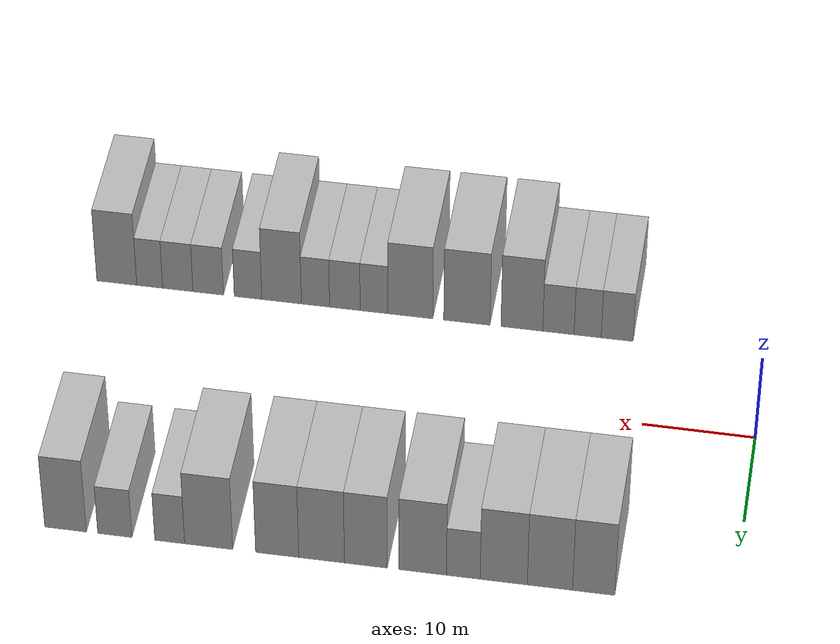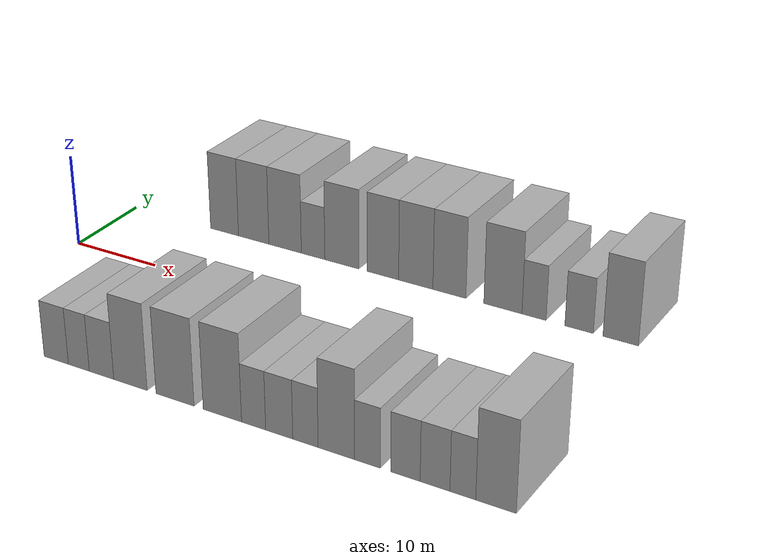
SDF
<sdf version="1.6">
 <world name="default">
  <model name="building_1">
   <static>1</static>
   <pose>11.8060 15.0000 0 0.000000 0.000000 1.570796</pose>
   <link name="link">
    <pose>0 0 4.50 0 0 0</pose>
    <collision name="collision"><geometry><box><size>10.0000 3.6119 9.0000</size></box></geometry></collision>
    <visual name="visual">
     <cast_shadows>0</cast_shadows>
     <geometry><box><size>10.0000 3.6119 9.0000</size></box></geometry>
     <material>
      <script>
       <uri>model://HANNAS_wall/materials/scripts</uri>
       <uri>model://HANNAS_wall/materials/textures</uri>
       <name>vrc/HANNAS_wall</name>
      </script>
     </material>
    </visual>
   </link>
  </model>
  <model name="building_2">
   <static>1</static>
   <pose>15.5486 15.0000 0 0.000000 0.000000 1.570796</pose>
   <link name="link">
    <pose>0 0 4.50 0 0 0</pose>
    <collision name="collision"><geometry><box><size>10.0000 3.8733 9.0000</size></box></geometry></collision>
    <visual name="visual">
     <cast_shadows>0</cast_shadows>
     <geometry><box><size>10.0000 3.8733 9.0000</size></box></geometry>
     <material>
      <script>
       <uri>model://HANNAS_wall/materials/scripts</uri>
       <uri>model://HANNAS_wall/materials/textures</uri>
       <name>vrc/HANNAS_wall</name>
      </script>
     </material>
    </visual>
   </link>
  </model>
  <model name="building_3">
   <static>1</static>
   <pose>19.5123 15.0000 0 0.000000 0.000000 1.570796</pose>
   <link name="link">
    <pose>0 0 4.50 0 0 0</pose>
    <collision name="collision"><geometry><box><size>10.0000 4.0541 9.0000</size></box></geometry></collision>
    <visual name="visual">
     <cast_shadows>0</cast_shadows>
     <geometry><box><size>10.0000 4.0541 9.0000</size></box></geometry>
     <material>
      <script>
       <uri>model://HANNAS_wall/materials/scripts</uri>
       <uri>model://HANNAS_wall/materials/textures</uri>
       <name>vrc/HANNAS_wall</name>
      </script>
     </material>
    </visual>
   </link>
  </model>
  <model name="building_4">
   <static>1</static>
   <pose>22.9831 15.0000 0 0.000000 0.000000 1.570796</pose>
   <link name="link">
    <pose>0 0 3.00 0 0 0</pose>
    <collision name="collision"><geometry><box><size>10.0000 2.8875 6.0000</size></box></geometry></collision>
    <visual name="visual">
     <cast_shadows>0</cast_shadows>
     <geometry><box><size>10.0000 2.8875 6.0000</size></box></geometry>
     <material>
      <script>
       <uri>model://HANNAS_wall/materials/scripts</uri>
       <uri>model://HANNAS_wall/materials/textures</uri>
       <name>vrc/HANNAS_wall</name>
      </script>
     </material>
    </visual>
   </link>
  </model>
  <model name="building_5">
   <static>1</static>
   <pose>26.4760 15.0000 0 0.000000 0.000000 1.570796</pose>
   <link name="link">
    <pose>0 0 4.50 0 0 0</pose>
    <collision name="collision"><geometry><box><size>10.0000 4.0983 9.0000</size></box></geometry></collision>
    <visual name="visual">
     <cast_shadows>0</cast_shadows>
     <geometry><box><size>10.0000 4.0983 9.0000</size></box></geometry>
     <material>
      <script>
       <uri>model://HANNAS_wall/materials/scripts</uri>
       <uri>model://HANNAS_wall/materials/textures</uri>
       <name>vrc/HANNAS_wall</name>
      </script>
     </material>
    </visual>
   </link>
  </model>
  <model name="building_6">
   <static>1</static>
   <pose>31.3769 15.0000 0 0.000000 0.000000 1.570796</pose>
   <link name="link">
    <pose>0 0 4.50 0 0 0</pose>
    <collision name="collision"><geometry><box><size>10.0000 3.7035 9.0000</size></box></geometry></collision>
    <visual name="visual">
     <cast_shadows>0</cast_shadows>
     <geometry><box><size>10.0000 3.7035 9.0000</size></box></geometry>
     <material>
      <script>
       <uri>model://HANNAS_wall/materials/scripts</uri>
       <uri>model://HANNAS_wall/materials/textures</uri>
       <name>vrc/HANNAS_wall</name>
      </script>
     </material>
    </visual>
   </link>
  </model>
  <model name="building_7">
   <static>1</static>
   <pose>35.2094 15.0000 0 0.000000 0.000000 1.570796</pose>
   <link name="link">
    <pose>0 0 4.50 0 0 0</pose>
    <collision name="collision"><geometry><box><size>10.0000 3.9614 9.0000</size></box></geometry></collision>
    <visual name="visual">
     <cast_shadows>0</cast_shadows>
     <geometry><box><size>10.0000 3.9614 9.0000</size></box></geometry>
     <material>
      <script>
       <uri>model://HANNAS_wall/materials/scripts</uri>
       <uri>model://HANNAS_wall/materials/textures</uri>
       <name>vrc/HANNAS_wall</name>
      </script>
     </material>
    </visual>
   </link>
  </model>
  <model name="building_8">
   <static>1</static>
   <pose>39.0596 15.0000 0 0.000000 0.000000 1.570796</pose>
   <link name="link">
    <pose>0 0 4.50 0 0 0</pose>
    <collision name="collision"><geometry><box><size>10.0000 3.7391 9.0000</size></box></geometry></collision>
    <visual name="visual">
     <cast_shadows>0</cast_shadows>
     <geometry><box><size>10.0000 3.7391 9.0000</size></box></geometry>
     <material>
      <script>
       <uri>model://HANNAS_wall/materials/scripts</uri>
       <uri>model://HANNAS_wall/materials/textures</uri>
       <name>vrc/HANNAS_wall</name>
      </script>
     </material>
    </visual>
   </link>
  </model>
  <model name="building_9">
   <static>1</static>
   <pose>45.0208 15.0000 0 0.000000 0.000000 1.570796</pose>
   <link name="link">
    <pose>0 0 4.50 0 0 0</pose>
    <collision name="collision"><geometry><box><size>10.0000 4.1831 9.0000</size></box></geometry></collision>
    <visual name="visual">
     <cast_shadows>0</cast_shadows>
     <geometry><box><size>10.0000 4.1831 9.0000</size></box></geometry>
     <material>
      <script>
       <uri>model://HANNAS_wall/materials/scripts</uri>
       <uri>model://HANNAS_wall/materials/textures</uri>
       <name>vrc/HANNAS_wall</name>
      </script>
     </material>
    </visual>
   </link>
  </model>
  <model name="building_10">
   <static>1</static>
   <pose>48.4158 15.0000 0 0.000000 0.000000 1.570796</pose>
   <link name="link">
    <pose>0 0 3.00 0 0 0</pose>
    <collision name="collision"><geometry><box><size>10.0000 2.6068 6.0000</size></box></geometry></collision>
    <visual name="visual">
     <cast_shadows>0</cast_shadows>
     <geometry><box><size>10.0000 2.6068 6.0000</size></box></geometry>
     <material>
      <script>
       <uri>model://HANNAS_wall/materials/scripts</uri>
       <uri>model://HANNAS_wall/materials/textures</uri>
       <name>vrc/HANNAS_wall</name>
      </script>
     </material>
    </visual>
   </link>
  </model>
  <model name="building_11">
   <static>1</static>
   <pose>53.2167 15.0000 0 0.000000 0.000000 1.570796</pose>
   <link name="link">
    <pose>0 0 3.00 0 0 0</pose>
    <collision name="collision"><geometry><box><size>10.0000 2.9951 6.0000</size></box></geometry></collision>
    <visual name="visual">
     <cast_shadows>0</cast_shadows>
     <geometry><box><size>10.0000 2.9951 6.0000</size></box></geometry>
     <material>
      <script>
       <uri>model://HANNAS_wall/materials/scripts</uri>
       <uri>model://HANNAS_wall/materials/textures</uri>
       <name>vrc/HANNAS_wall</name>
      </script>
     </material>
    </visual>
   </link>
  </model>
  <model name="building_12">
   <static>1</static>
   <pose>57.5387 15.0000 0 0.000000 0.000000 1.570796</pose>
   <link name="link">
    <pose>0 0 4.50 0 0 0</pose>
    <collision name="collision"><geometry><box><size>10.0000 3.6490 9.0000</size></box></geometry></collision>
    <visual name="visual">
     <cast_shadows>0</cast_shadows>
     <geometry><box><size>10.0000 3.6490 9.0000</size></box></geometry>
     <material>
      <script>
       <uri>model://HANNAS_wall/materials/scripts</uri>
       <uri>model://HANNAS_wall/materials/textures</uri>
       <name>vrc/HANNAS_wall</name>
      </script>
     </material>
    </visual>
   </link>
  </model>
  <model name="building_54">
   <static>1</static>
   <pose>13.4438 -15.0000 0 0.000000 0.000000 1.570796</pose>
   <link name="link">
    <pose>0 0 3.00 0 0 0</pose>
    <collision name="collision"><geometry><box><size>10.0000 2.8877 6.0000</size></box></geometry></collision>
    <visual name="visual">
     <cast_shadows>0</cast_shadows>
     <geometry><box><size>10.0000 2.8877 6.0000</size></box></geometry>
     <material>
      <script>
       <uri>model://HANNAS_wall/materials/scripts</uri>
       <uri>model://HANNAS_wall/materials/textures</uri>
       <name>vrc/HANNAS_wall</name>
      </script>
     </material>
    </visual>
   </link>
  </model>
  <model name="building_55">
   <static>1</static>
   <pose>16.1163 -15.0000 0 0.000000 0.000000 1.570796</pose>
   <link name="link">
    <pose>0 0 3.00 0 0 0</pose>
    <collision name="collision"><geometry><box><size>10.0000 2.4572 6.0000</size></box></geometry></collision>
    <visual name="visual">
     <cast_shadows>0</cast_shadows>
     <geometry><box><size>10.0000 2.4572 6.0000</size></box></geometry>
     <material>
      <script>
       <uri>model://HANNAS_wall/materials/scripts</uri>
       <uri>model://HANNAS_wall/materials/textures</uri>
       <name>vrc/HANNAS_wall</name>
      </script>
     </material>
    </visual>
   </link>
  </model>
  <model name="building_56">
   <static>1</static>
   <pose>18.7672 -15.0000 0 0.000000 0.000000 1.570796</pose>
   <link name="link">
    <pose>0 0 3.00 0 0 0</pose>
    <collision name="collision"><geometry><box><size>10.0000 2.8445 6.0000</size></box></geometry></collision>
    <visual name="visual">
     <cast_shadows>0</cast_shadows>
     <geometry><box><size>10.0000 2.8445 6.0000</size></box></geometry>
     <material>
      <script>
       <uri>model://HANNAS_wall/materials/scripts</uri>
       <uri>model://HANNAS_wall/materials/textures</uri>
       <name>vrc/HANNAS_wall</name>
      </script>
     </material>
    </visual>
   </link>
  </model>
  <model name="building_57">
   <static>1</static>
   <pose>22.0871 -15.0000 0 0.000000 0.000000 1.570796</pose>
   <link name="link">
    <pose>0 0 4.50 0 0 0</pose>
    <collision name="collision"><geometry><box><size>10.0000 3.7953 9.0000</size></box></geometry></collision>
    <visual name="visual">
     <cast_shadows>0</cast_shadows>
     <geometry><box><size>10.0000 3.7953 9.0000</size></box></geometry>
     <material>
      <script>
       <uri>model://HANNAS_wall/materials/scripts</uri>
       <uri>model://HANNAS_wall/materials/textures</uri>
       <name>vrc/HANNAS_wall</name>
      </script>
     </material>
    </visual>
   </link>
  </model>
  <model name="building_58">
   <static>1</static>
   <pose>27.0920 -15.0000 0 0.000000 0.000000 1.570796</pose>
   <link name="link">
    <pose>0 0 4.50 0 0 0</pose>
    <collision name="collision"><geometry><box><size>10.0000 4.2145 9.0000</size></box></geometry></collision>
    <visual name="visual">
     <cast_shadows>0</cast_shadows>
     <geometry><box><size>10.0000 4.2145 9.0000</size></box></geometry>
     <material>
      <script>
       <uri>model://HANNAS_wall/materials/scripts</uri>
       <uri>model://HANNAS_wall/materials/textures</uri>
       <name>vrc/HANNAS_wall</name>
      </script>
     </material>
    </visual>
   </link>
  </model>
  <model name="building_59">
   <static>1</static>
   <pose>32.2568 -15.0000 0 0.000000 0.000000 1.570796</pose>
   <link name="link">
    <pose>0 0 4.50 0 0 0</pose>
    <collision name="collision"><geometry><box><size>10.0000 4.1152 9.0000</size></box></geometry></collision>
    <visual name="visual">
     <cast_shadows>0</cast_shadows>
     <geometry><box><size>10.0000 4.1152 9.0000</size></box></geometry>
     <material>
      <script>
       <uri>model://HANNAS_wall/materials/scripts</uri>
       <uri>model://HANNAS_wall/materials/textures</uri>
       <name>vrc/HANNAS_wall</name>
      </script>
     </material>
    </visual>
   </link>
  </model>
  <model name="building_60">
   <static>1</static>
   <pose>35.5849 -15.0000 0 0.000000 0.000000 1.570796</pose>
   <link name="link">
    <pose>0 0 3.00 0 0 0</pose>
    <collision name="collision"><geometry><box><size>10.0000 2.5411 6.0000</size></box></geometry></collision>
    <visual name="visual">
     <cast_shadows>0</cast_shadows>
     <geometry><box><size>10.0000 2.5411 6.0000</size></box></geometry>
     <material>
      <script>
       <uri>model://HANNAS_wall/materials/scripts</uri>
       <uri>model://HANNAS_wall/materials/textures</uri>
       <name>vrc/HANNAS_wall</name>
      </script>
     </material>
    </visual>
   </link>
  </model>
  <model name="building_61">
   <static>1</static>
   <pose>38.2624 -15.0000 0 0.000000 0.000000 1.570796</pose>
   <link name="link">
    <pose>0 0 3.00 0 0 0</pose>
    <collision name="collision"><geometry><box><size>10.0000 2.8138 6.0000</size></box></geometry></collision>
    <visual name="visual">
     <cast_shadows>0</cast_shadows>
     <geometry><box><size>10.0000 2.8138 6.0000</size></box></geometry>
     <material>
      <script>
       <uri>model://HANNAS_wall/materials/scripts</uri>
       <uri>model://HANNAS_wall/materials/textures</uri>
       <name>vrc/HANNAS_wall</name>
      </script>
     </material>
    </visual>
   </link>
  </model>
  <model name="building_62">
   <static>1</static>
   <pose>40.9618 -15.0000 0 0.000000 0.000000 1.570796</pose>
   <link name="link">
    <pose>0 0 3.00 0 0 0</pose>
    <collision name="collision"><geometry><box><size>10.0000 2.5850 6.0000</size></box></geometry></collision>
    <visual name="visual">
     <cast_shadows>0</cast_shadows>
     <geometry><box><size>10.0000 2.5850 6.0000</size></box></geometry>
     <material>
      <script>
       <uri>model://HANNAS_wall/materials/scripts</uri>
       <uri>model://HANNAS_wall/materials/textures</uri>
       <name>vrc/HANNAS_wall</name>
      </script>
     </material>
    </visual>
   </link>
  </model>
  <model name="building_63">
   <static>1</static>
   <pose>44.0783 -15.0000 0 0.000000 0.000000 1.570796</pose>
   <link name="link">
    <pose>0 0 4.50 0 0 0</pose>
    <collision name="collision"><geometry><box><size>10.0000 3.6481 9.0000</size></box></geometry></collision>
    <visual name="visual">
     <cast_shadows>0</cast_shadows>
     <geometry><box><size>10.0000 3.6481 9.0000</size></box></geometry>
     <material>
      <script>
       <uri>model://HANNAS_wall/materials/scripts</uri>
       <uri>model://HANNAS_wall/materials/textures</uri>
       <name>vrc/HANNAS_wall</name>
      </script>
     </material>
    </visual>
   </link>
  </model>
  <model name="building_64">
   <static>1</static>
   <pose>47.1709 -15.0000 0 0.000000 0.000000 1.570796</pose>
   <link name="link">
    <pose>0 0 3.00 0 0 0</pose>
    <collision name="collision"><geometry><box><size>10.0000 2.5371 6.0000</size></box></geometry></collision>
    <visual name="visual">
     <cast_shadows>0</cast_shadows>
     <geometry><box><size>10.0000 2.5371 6.0000</size></box></geometry>
     <material>
      <script>
       <uri>model://HANNAS_wall/materials/scripts</uri>
       <uri>model://HANNAS_wall/materials/textures</uri>
       <name>vrc/HANNAS_wall</name>
      </script>
     </material>
    </visual>
   </link>
  </model>
  <model name="building_65">
   <static>1</static>
   <pose>50.8528 -15.0000 0 0.000000 0.000000 1.570796</pose>
   <link name="link">
    <pose>0 0 3.00 0 0 0</pose>
    <collision name="collision"><geometry><box><size>10.0000 2.8267 6.0000</size></box></geometry></collision>
    <visual name="visual">
     <cast_shadows>0</cast_shadows>
     <geometry><box><size>10.0000 2.8267 6.0000</size></box></geometry>
     <material>
      <script>
       <uri>model://HANNAS_wall/materials/scripts</uri>
       <uri>model://HANNAS_wall/materials/textures</uri>
       <name>vrc/HANNAS_wall</name>
      </script>
     </material>
    </visual>
   </link>
  </model>
  <model name="building_66">
   <static>1</static>
   <pose>53.6703 -15.0000 0 0.000000 0.000000 1.570796</pose>
   <link name="link">
    <pose>0 0 3.00 0 0 0</pose>
    <collision name="collision"><geometry><box><size>10.0000 2.8082 6.0000</size></box></geometry></collision>
    <visual name="visual">
     <cast_shadows>0</cast_shadows>
     <geometry><box><size>10.0000 2.8082 6.0000</size></box></geometry>
     <material>
      <script>
       <uri>model://HANNAS_wall/materials/scripts</uri>
       <uri>model://HANNAS_wall/materials/textures</uri>
       <name>vrc/HANNAS_wall</name>
      </script>
     </material>
    </visual>
   </link>
  </model>
  <model name="building_67">
   <static>1</static>
   <pose>56.2759 -15.0000 0 0.000000 0.000000 1.570796</pose>
   <link name="link">
    <pose>0 0 3.00 0 0 0</pose>
    <collision name="collision"><geometry><box><size>10.0000 2.4032 6.0000</size></box></geometry></collision>
    <visual name="visual">
     <cast_shadows>0</cast_shadows>
     <geometry><box><size>10.0000 2.4032 6.0000</size></box></geometry>
     <material>
      <script>
       <uri>model://HANNAS_wall/materials/scripts</uri>
       <uri>model://HANNAS_wall/materials/textures</uri>
       <name>vrc/HANNAS_wall</name>
      </script>
     </material>
    </visual>
   </link>
  </model>
  <model name="building_68">
   <static>1</static>
   <pose>59.3273 -15.0000 0 0.000000 0.000000 1.570796</pose>
   <link name="link">
    <pose>0 0 4.50 0 0 0</pose>
    <collision name="collision"><geometry><box><size>10.0000 3.6995 9.0000</size></box></geometry></collision>
    <visual name="visual">
     <cast_shadows>0</cast_shadows>
     <geometry><box><size>10.0000 3.6995 9.0000</size></box></geometry>
     <material>
      <script>
       <uri>model://HANNAS_wall/materials/scripts</uri>
       <uri>model://HANNAS_wall/materials/textures</uri>
       <name>vrc/HANNAS_wall</name>
      </script>
     </material>
    </visual>
   </link>
  </model>
 </world>
</sdf>
